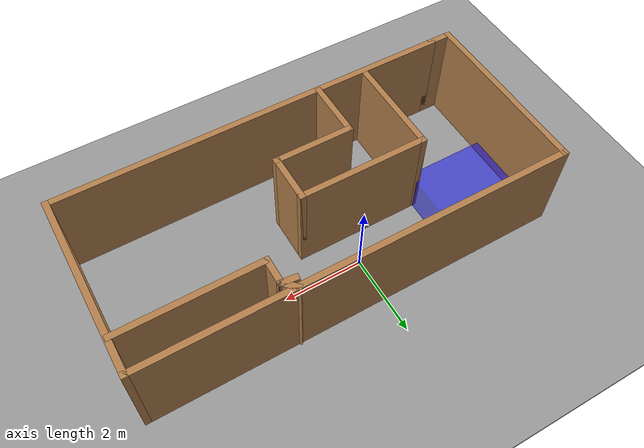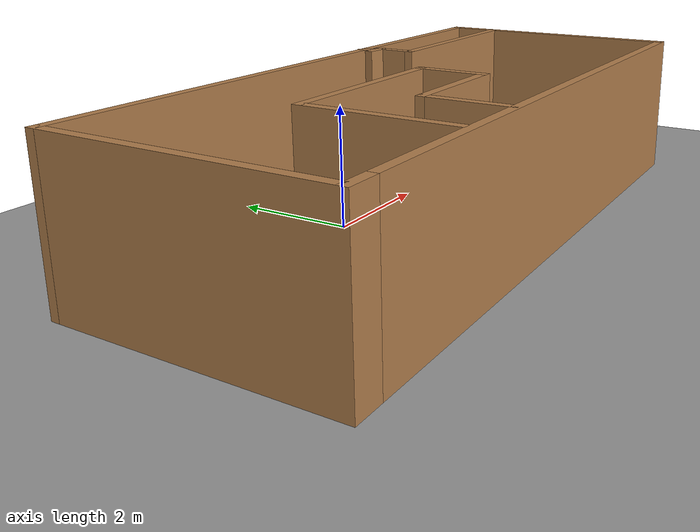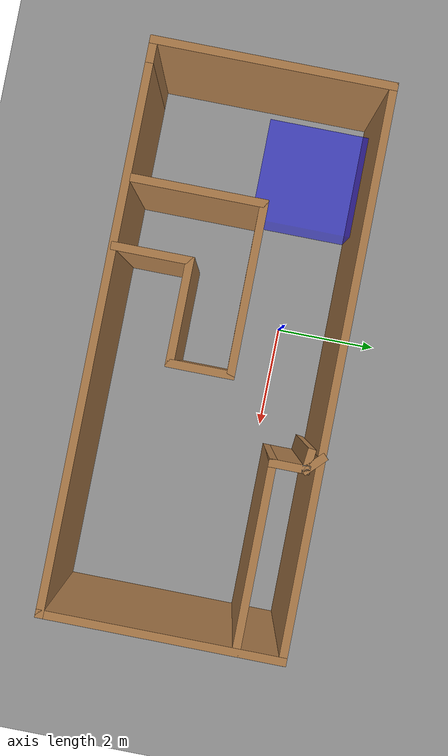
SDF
<sdf version="1.6">
 <world name="default">
  <light name="sun" type="directional">
   <pose>0 0 10 0 -0 0</pose>
   <diffuse>0.8 0.8 0.8 1</diffuse>
   <specular>0.2 0.2 0.2 1</specular>
   <attenuation>
    <range>1000</range>
    <constant>0.9</constant>
    <linear>0.01</linear>
    <quadratic>0.001</quadratic>
   </attenuation>
   <direction>-0.5 0.1 -0.9</direction>
  </light>
  <model name="ground_plane">
   <static>1</static>
   <link name="link">
    <collision name="collision">
     <geometry><plane><normal>0 0 1</normal><size>100 100</size></plane></geometry>
     <surface><friction><ode><mu>100</mu><mu2>50</mu2></ode></friction></surface>
    </collision>
    <visual name="visual">
     <cast_shadows>0</cast_shadows>
     <geometry><plane><normal>0 0 1</normal><size>100 100</size></plane></geometry>
     <material>
      <script><uri>file://media/materials/scripts/gazebo.material</uri><name>Gazebo/Grey</name></script>
     </material>
    </visual>
   </link>
  </model>
  <gravity>0 0 -9.8</gravity>
  <magnetic_field>6e-06 2.3e-05 -4.2e-05</magnetic_field>
  <atmosphere type="adiabatic"/>
  <physics name="default_physics" default="0" type="ode">
   <max_step_size>0.001</max_step_size>
   <real_time_factor>1</real_time_factor>
   <real_time_update_rate>1000</real_time_update_rate>
  </physics>
  <scene><ambient>0.4 0.4 0.4 1</ambient><background>0.7 0.7 0.7 1</background><shadows>1</shadows></scene>
  <spherical_coordinates>
   <surface_model>EARTH_WGS84</surface_model>
   <latitude_deg>0</latitude_deg>
   <longitude_deg>0</longitude_deg>
   <elevation>0</elevation>
   <heading_deg>0</heading_deg>
  </spherical_coordinates>
  <model name="ground_plane_0">
   <static>1</static>
   <link name="link">
    <collision name="collision">
     <geometry><plane><normal>0 0 1</normal><size>100 100</size></plane></geometry>
     <surface>
      <contact><collide_bitmask>65535</collide_bitmask></contact>
      <friction><ode><mu>100</mu><mu2>50</mu2></ode></friction>
     </surface>
    </collision>
    <visual name="visual">
     <cast_shadows>0</cast_shadows>
     <geometry><plane><normal>0 0 1</normal><size>100 100</size></plane></geometry>
     <material>
      <script><uri>file://media/materials/scripts/gazebo.material</uri><name>Gazebo/Grey</name></script>
     </material>
    </visual>
   </link>
   <pose>0.794647 4.32592 0 0 -0 0</pose>
  </model>
  <model name="my_practice_room1">
   <pose>0.670583 -1.1043 0 0 -0 0</pose>
   <link name="Wall_10">
    <collision name="Wall_10_Collision">
     <geometry><box><size>1.25 0.15 2.5</size></box></geometry>
     <pose>0 0 1.25 0 -0 0</pose>
    </collision>
    <visual name="Wall_10_Visual">
     <pose>0 0 1.25 0 -0 0</pose>
     <geometry><box><size>1.25 0.15 2.5</size></box></geometry>
     <material>
      <script><uri>file://media/materials/scripts/gazebo.material</uri><name>Gazebo/Wood</name></script>
      <ambient>1 1 1 1</ambient>
     </material>
     <meta><layer>0</layer></meta>
    </visual>
    <pose>0.418867 -0.257107 0 0 0 -1.5708</pose>
   </link>
   <link name="Wall_11">
    <collision name="Wall_11_Collision">
     <geometry><box><size>2 0.15 2.5</size></box></geometry>
     <pose>0 0 1.25 0 -0 0</pose>
    </collision>
    <visual name="Wall_11_Visual">
     <pose>0 0 1.25 0 -0 0</pose>
     <geometry><box><size>2 0.15 2.5</size></box></geometry>
     <material>
      <script><uri>file://media/materials/scripts/gazebo.material</uri><name>Gazebo/Wood</name></script>
      <ambient>1 1 1 1</ambient>
     </material>
     <meta><layer>0</layer></meta>
    </visual>
    <pose>-0.506133 -0.807107 0 0 -0 3.14159</pose>
   </link>
   <link name="Wall_12">
    <collision name="Wall_12_Collision">
     <geometry><box><size>1.5 0.15 2.5</size></box></geometry>
     <pose>0 0 1.25 0 -0 0</pose>
    </collision>
    <visual name="Wall_12_Visual">
     <pose>0 0 1.25 0 -0 0</pose>
     <geometry><box><size>1.5 0.15 2.5</size></box></geometry>
     <material>
      <script><uri>file://media/materials/scripts/gazebo.material</uri><name>Gazebo/Wood</name></script>
      <ambient>1 1 1 1</ambient>
     </material>
     <meta><layer>0</layer></meta>
    </visual>
    <pose>-1.43113 -1.48211 0 0 0 -1.5708</pose>
   </link>
   <link name="Wall_14">
    <collision name="Wall_14_Collision">
     <geometry><box><size>3.5 0.15 2.5</size></box></geometry>
     <pose>0 0 1.25 0 -0 0</pose>
    </collision>
    <visual name="Wall_14_Visual">
     <pose>0 0 1.25 0 -0 0</pose>
     <geometry><box><size>3.5 0.15 2.5</size></box></geometry>
     <material>
      <script><uri>file://media/materials/scripts/gazebo.material</uri><name>Gazebo/Wood</name></script>
      <ambient>1 1 1 1</ambient>
     </material>
     <meta><layer>0</layer></meta>
    </visual>
    <pose>3.47132 1.31848 0 0 -0 0</pose>
   </link>
   <link name="Wall_16">
    <collision name="Wall_16_Collision">
     <geometry><box><size>0.75 0.15 2.5</size></box></geometry>
     <pose>0 0 1.25 0 -0 0</pose>
    </collision>
    <visual name="Wall_16_Visual">
     <pose>0 0 1.25 0 -0 0</pose>
     <geometry><box><size>0.75 0.15 2.5</size></box></geometry>
     <material>
      <script><uri>file://media/materials/scripts/gazebo.material</uri><name>Gazebo/Wood</name></script>
      <ambient>1 1 1 1</ambient>
     </material>
     <meta><layer>0</layer></meta>
    </visual>
    <pose>1.79632 1.61848 0 0 -0 1.5708</pose>
   </link>
   <link name="Wall_18">
    <collision name="Wall_18_Collision">
     <geometry><box><size>0.15 0.15 2.5</size></box></geometry>
     <pose>0 0 1.25 0 -0 0</pose>
    </collision>
    <visual name="Wall_18_Visual">
     <pose>0 0 1.25 0 -0 0</pose>
     <geometry><box><size>0.15 0.15 2.5</size></box></geometry>
     <material>
      <script><uri>file://media/materials/scripts/gazebo.material</uri><name>Gazebo/Grey</name></script>
      <ambient>1 1 1 1</ambient>
     </material>
     <meta><layer>0</layer></meta>
    </visual>
    <pose>1.79632 1.91847 0 0 -0 0</pose>
   </link>
   <link name="Wall_2">
    <collision name="Wall_2_Collision">
     <geometry><box><size>10 0.15 2.5</size></box></geometry>
     <pose>0 0 1.25 0 -0 0</pose>
    </collision>
    <visual name="Wall_2_Visual">
     <pose>0 0 1.25 0 -0 0</pose>
     <geometry><box><size>10 0.15 2.5</size></box></geometry>
     <material>
      <script><uri>file://media/materials/scripts/gazebo.material</uri><name>Gazebo/Wood</name></script>
      <ambient>1 1 1 1</ambient>
     </material>
     <meta><layer>0</layer></meta>
    </visual>
    <pose>0.25 -2.19703 0 0 -0 0</pose>
   </link>
   <link name="Wall_20">
    <collision name="Wall_20_Collision">
     <geometry><box><size>0.458379 0.15 2.5</size></box></geometry>
     <pose>0 0 1.25 0 -0 0</pose>
    </collision>
    <visual name="Wall_20_Visual">
     <pose>0 0 1.25 0 -0 0</pose>
     <geometry><box><size>0.458379 0.15 2.5</size></box></geometry>
     <material>
      <script><uri>file://media/materials/scripts/gazebo.material</uri><name>Gazebo/Wood</name></script>
      <ambient>1 1 1 1</ambient>
     </material>
     <meta><layer>0</layer></meta>
    </visual>
    <pose>1.64299 1.93475 0 0 0 -0.105779</pose>
   </link>
   <link name="Wall_21">
    <collision name="Wall_21_Collision">
     <geometry><box><size>0.5 0.15 2.5</size></box></geometry>
     <pose>0 0 1.25 0 -0 0</pose>
    </collision>
    <visual name="Wall_21_Visual">
     <pose>0 0 1.25 0 -0 0</pose>
     <geometry><box><size>0.5 0.15 2.5</size></box></geometry>
     <material>
      <script><uri>file://media/materials/scripts/gazebo.material</uri><name>Gazebo/Wood</name></script>
      <ambient>1 1 1 1</ambient>
     </material>
     <meta><layer>0</layer></meta>
    </visual>
    <pose>1.67258 2.04222 0 0 -0 2.35619</pose>
   </link>
   <link name="Wall_3">
    <collision name="Wall_3_Collision">
     <geometry><box><size>4.5 0.15 2.5</size></box></geometry>
     <pose>0 0 1.25 0 -0 0</pose>
    </collision>
    <visual name="Wall_3_Visual">
     <pose>0 0 1.25 0 -0 0</pose>
     <geometry><box><size>4.5 0.15 2.5</size></box></geometry>
     <material>
      <script><uri>file://media/materials/scripts/gazebo.material</uri><name>Gazebo/Wood</name></script>
      <ambient>1 1 1 1</ambient>
     </material>
     <meta><layer>0</layer></meta>
    </visual>
    <pose>5.175 -0.022028 0 0 -0 1.5708</pose>
   </link>
   <link name="Wall_4">
    <collision name="Wall_4_Collision">
     <geometry><box><size>10.5 0.15 2.5</size></box></geometry>
     <pose>0 0 1.25 0 -0 0</pose>
    </collision>
    <visual name="Wall_4_Visual">
     <pose>0 0 1.25 0 -0 0</pose>
     <geometry><box><size>10.5 0.15 2.5</size></box></geometry>
     <material>
      <script><uri>file://media/materials/scripts/gazebo.material</uri><name>Gazebo/Wood</name></script>
      <ambient>1 1 1 1</ambient>
     </material>
     <meta><layer>0</layer></meta>
    </visual>
    <pose>0 2.15297 0 0 -0 3.14159</pose>
   </link>
   <link name="Wall_5">
    <collision name="Wall_5_Collision">
     <geometry><box><size>4.5 0.15 2.5</size></box></geometry>
     <pose>0 0 1.25 0 -0 0</pose>
    </collision>
    <visual name="Wall_5_Visual">
     <pose>0 0 1.25 0 -0 0</pose>
     <geometry><box><size>4.5 0.15 2.5</size></box></geometry>
     <material>
      <script><uri>file://media/materials/scripts/gazebo.material</uri><name>Gazebo/Wood</name></script>
      <ambient>1 1 1 1</ambient>
     </material>
     <meta><layer>0</layer></meta>
    </visual>
    <pose>-5.175 -0.022028 0 0 0 -1.5708</pose>
   </link>
   <link name="Wall_6">
    <collision name="Wall_6_Collision">
     <geometry><box><size>0.65 0.15 2.5</size></box></geometry>
     <pose>0 0 1.25 0 -0 0</pose>
    </collision>
    <visual name="Wall_6_Visual">
     <pose>0 0 1.25 0 -0 0</pose>
     <geometry><box><size>0.65 0.15 2.5</size></box></geometry>
     <material>
      <script><uri>file://media/materials/scripts/gazebo.material</uri><name>Gazebo/Wood</name></script>
      <ambient>1 1 1 1</ambient>
     </material>
     <meta><layer>0</layer></meta>
    </visual>
    <pose>-4.925 -2.19703 0 0 -0 0</pose>
   </link>
   <link name="Wall_8">
    <collision name="Wall_8_Collision">
     <geometry><box><size>2.5 0.15 2.5</size></box></geometry>
     <pose>0 0 1.25 0 -0 0</pose>
    </collision>
    <visual name="Wall_8_Visual">
     <pose>0 0 1.25 0 -0 0</pose>
     <geometry><box><size>2.5 0.15 2.5</size></box></geometry>
     <material>
      <script><uri>file://media/materials/scripts/gazebo.material</uri><name>Gazebo/Wood</name></script>
      <ambient>1 1 1 1</ambient>
     </material>
     <meta><layer>0</layer></meta>
    </visual>
    <pose>-2.68113 -0.882107 0 0 -0 1.5708</pose>
   </link>
   <link name="Wall_9">
    <collision name="Wall_9_Collision">
     <geometry><box><size>3.25 0.15 2.5</size></box></geometry>
     <pose>0 0 1.25 0 -0 0</pose>
    </collision>
    <visual name="Wall_9_Visual">
     <pose>0 0 1.25 0 -0 0</pose>
     <geometry><box><size>3.25 0.15 2.5</size></box></geometry>
     <material>
      <script><uri>file://media/materials/scripts/gazebo.material</uri><name>Gazebo/Wood</name></script>
      <ambient>1 1 1 1</ambient>
     </material>
     <meta><layer>0</layer></meta>
    </visual>
    <pose>-1.13113 0.292893 0 0 -0 0</pose>
   </link>
   <static>1</static>
  </model>
  <light name="post_light" type="spot">
   <attenuation><range>0</range><linear>0.05</linear></attenuation>
   <specular>1 1 1 1</specular>
   <spot><inner_angle>0.5</inner_angle><outer_angle>1</outer_angle><falloff>1</falloff></spot>
   <pose>-5.62177 3.33349 9 0 -0 0</pose>
   <diffuse>1 1 1 1</diffuse>
   <direction>0 0 -1</direction>
  </light>
  <plugin name="ContainPlugin" filename="libContainPlugin.so">
   <enabled>true</enabled>
   <entity>robot1</entity>
   <namespace>~/contain_example</namespace>
   <pose frame="box::link">0 0 0 0 0 0</pose>
   <pose>-3 0 0 0 0 0</pose>
   <geometry><box><size>2 2 2</size></box></geometry>
  </plugin>
  <plugin name="AutomaticLight" filename="libTurnOnLightPlugin.so"/>
  <model name="box">
   <static>true</static>
   <pose>-3 0 0 0 0 0</pose>
   <link name="link">
    <visual name="visual">
     <geometry><box><size>2 2 2</size></box></geometry>
     <material>
      <ambient>0 0 1 0.5</ambient>
      <specular>0 0 1 0.5</specular>
      <diffuse>0 0 1 0.5</diffuse>
      <emissive>0 0 1 0.5</emissive>
     </material>
    </visual>
   </link>
  </model>
 </world>
</sdf>
